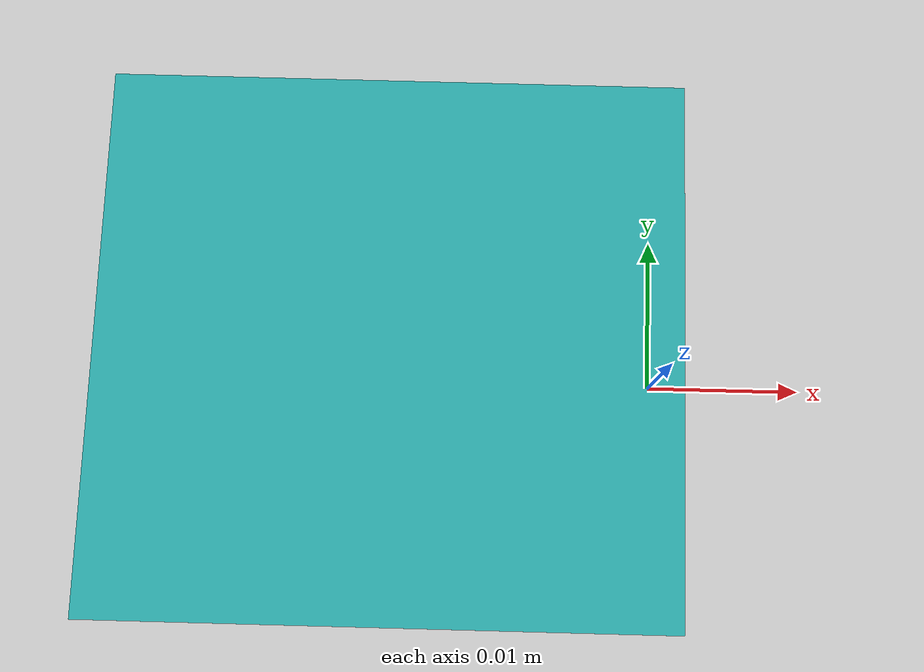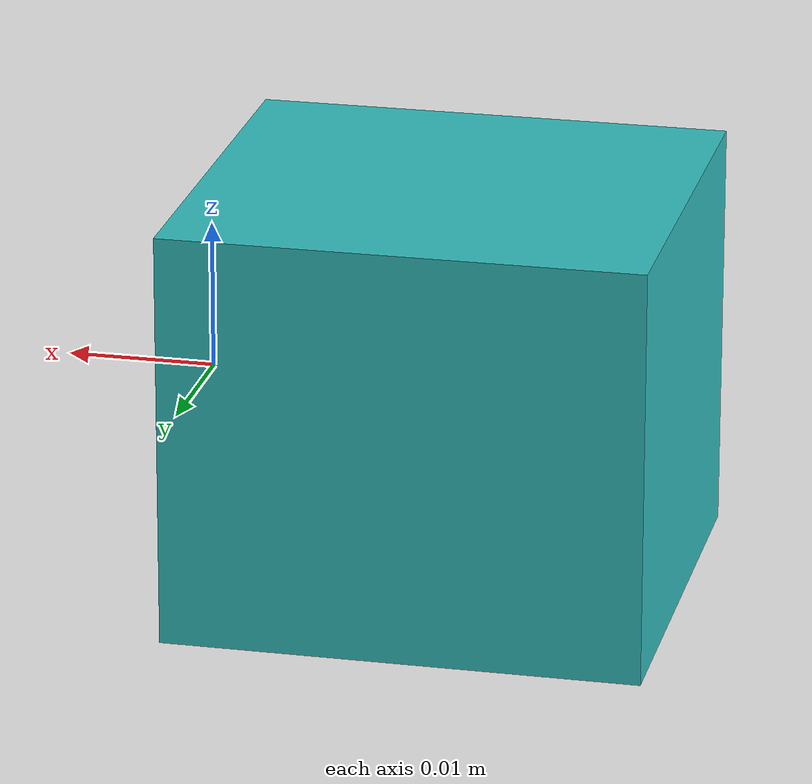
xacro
<?xml version="1.0" encoding="utf-8"?>

<robot name="box" xmlns:xacro="http://www.ros.org/wiki/xacro">

	<xacro:include filename="$(find r2b_env)/urdf/box_common.xacro"/>

	<link name="base_link">
		<xacro:box_inertia m="${mass}" x="${x}" y="${y}" z="${z}"/>
		<visual>
			<xacro:offseted_origin/>
			<geometry>
				<box size="${x} ${y} ${z}"/>
			</geometry>
		</visual>
		<collision>
			<xacro:offseted_origin/>
			<geometry>
				<box size="${x} ${y} ${z}"/>
			</geometry>
		</collision>
	</link>

	<gazebo reference="base_link">
		<material>Gazebo/Turquoise</material>
	</gazebo>

</robot>

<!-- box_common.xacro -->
<robot xmlns:xacro="http://www.ros.org/wiki/xacro">

	<xacro:property name="x" value="0.032"/>
	<xacro:property name="y" value="0.03"/>
	<xacro:property name="z" value="0.028"/>
	<xacro:property name="mass" value="0.03"/>

	<xacro:macro name="offseted_origin">
		<origin xyz="-${x/2} 0.0 0.0" rpy="0.0 0.0 0.0"/>
	</xacro:macro>

	<xacro:macro name="box_inertia" params="m x y z">
		<inertial>
			<xacro:offseted_origin/>
			<mass value="${m}"/>
			<inertia ixx="${m*(y*y+z*z)/12}" ixy="0.0" ixz="0.0"
					 iyy="${m*(x*x+z*z)/12}" iyz="0.0"
					 izz="${m*(x*x+z*z)/12}"/>
		</inertial>
	</xacro:macro>

</robot>
